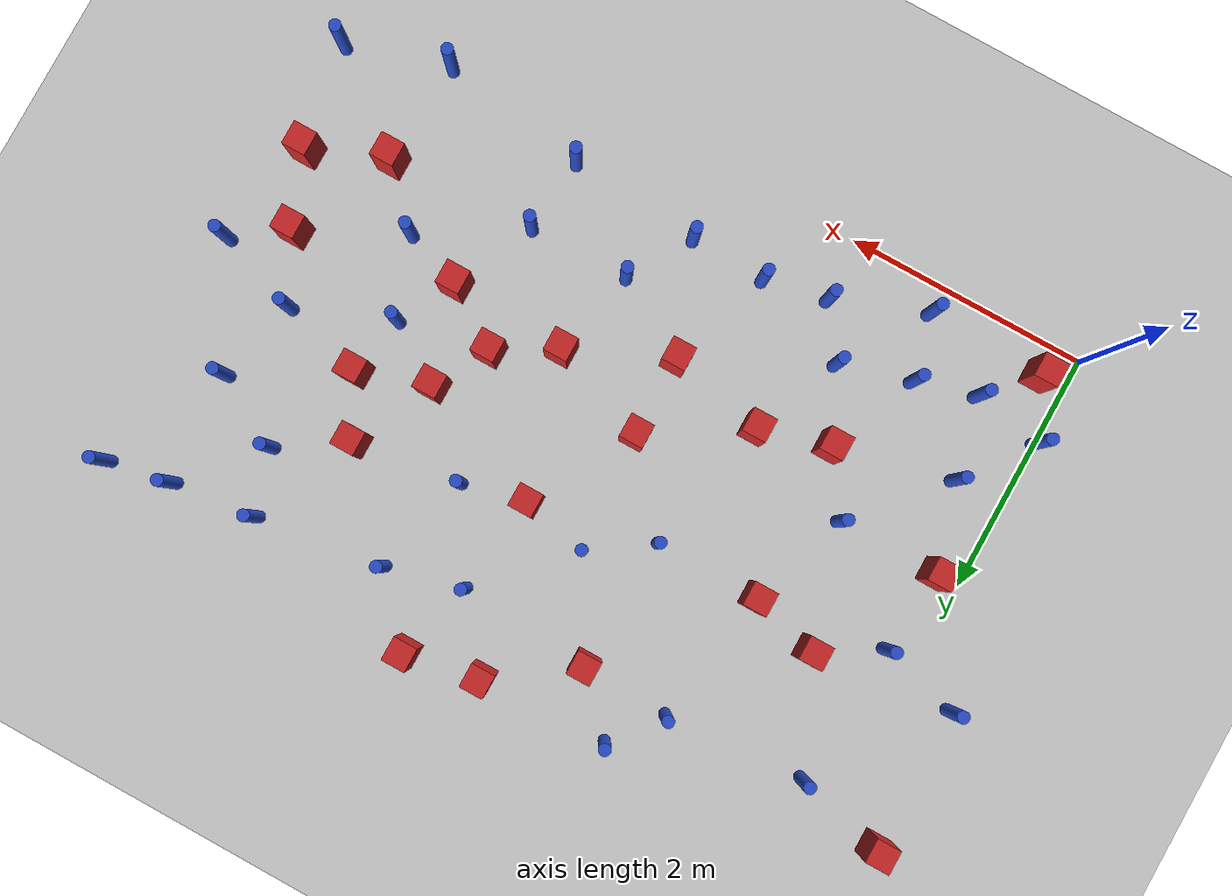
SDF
<sdf version="1.6">
 <world name="default">
  <model name="ground_plane">
   <static>1</static>
   <link name="link">
    <collision name="collision">
     <geometry><plane><normal>0 0 1</normal><size>100 100</size></plane></geometry>
     <surface><friction><ode><mu>100</mu><mu2>50</mu2></ode></friction></surface>
    </collision>
    <visual name="visual">
     <cast_shadows>0</cast_shadows>
     <geometry><plane><normal>0 0 1</normal><size>100 100</size></plane></geometry>
     <material>
      <ambient>1.0 1.0 1.0 1.0</ambient>
      <diffuse>0.8 0.8 0.8 1.0</diffuse>
      <specular>0.01 0.01 0.01 1.000000</specular>
     </material>
    </visual>
   </link>
  </model>
  <model name="square_post_obstacle1">
   <static>true</static>
   <pose>0.780798833853 2.99641068957 1.91545236811e-07 -7.35059704564e-06 1.12565212e-07 2.39332434364e-05</pose>
   <link name="link">
    <pose>0 0 0.25 0 -0 0</pose>
    <inertial>
     <mass>100</mass>
     <inertia>
      <ixx>0.166667</ixx>
      <ixy>0</ixy>
      <ixz>0</ixz>
      <iyy>0.166667</iyy>
      <iyz>0</iyz>
      <izz>0.166667</izz>
     </inertia>
    </inertial>
    <collision name="collision"><geometry><box><size>.2 .2 .5</size></box></geometry></collision>
    <visual name="visual">
     <geometry><box><size>.2 .2 .5</size></box></geometry>
     <material>
      <script><name>Gazebo/Red</name><uri>file://media/materials/scripts/gazebo.material</uri></script>
     </material>
    </visual>
   </link>
  </model>
  <model name="pole_obstacle7">
   <static>true</static>
   <pose>0.0157294788406 0.745171208726 7.38925637345e-09 -8.47170692798e-08 1.2497676491e-08 -1.74513093025e-07</pose>
   <link name="link">
    <pose>0 0 0.3 0 -0 0</pose>
    <inertial>
     <mass>1</mass>
     <inertia><ixx>0.145833</ixx><ixy>0</ixy><ixz>0</ixz><iyy>0.145833</iyy><iyz>0</iyz><izz>0.125</izz></inertia>
    </inertial>
    <collision name="collision">
     <geometry><cylinder><radius>0.05</radius><length>.6</length></cylinder></geometry>
    </collision>
    <visual name="visual">
     <geometry><cylinder><radius>0.05</radius><length>.6</length></cylinder></geometry>
     <material>
      <script><name>Gazebo/Blue</name><uri>file://media/materials/scripts/gazebo.material</uri></script>
     </material>
    </visual>
   </link>
  </model>
  <model name="pole_obstacle15">
   <static>true</static>
   <pose>1.82468125279 4.37478606143 7.38925637345e-09 -8.47170692799e-08 1.24976765033e-08 -1.74513093018e-07</pose>
   <link name="link">
    <pose>0 0 0.3 0 -0 0</pose>
    <inertial>
     <mass>1</mass>
     <inertia><ixx>0.145833</ixx><ixy>0</ixy><ixz>0</ixz><iyy>0.145833</iyy><iyz>0</iyz><izz>0.125</izz></inertia>
    </inertial>
    <collision name="collision">
     <geometry><cylinder><radius>0.05</radius><length>.6</length></cylinder></geometry>
    </collision>
    <visual name="visual">
     <geometry><cylinder><radius>0.05</radius><length>.6</length></cylinder></geometry>
     <material>
      <script><name>Gazebo/Blue</name><uri>file://media/materials/scripts/gazebo.material</uri></script>
     </material>
    </visual>
   </link>
  </model>
  <model name="square_post_obstacle23">
   <static>true</static>
   <pose>1.97175608762 1.70010967402 1.91545236811e-07 -7.35059704564e-06 1.12565212e-07 2.39332434364e-05</pose>
   <link name="link">
    <pose>0 0 0.25 0 -0 0</pose>
    <inertial>
     <mass>100</mass>
     <inertia>
      <ixx>0.166667</ixx>
      <ixy>0</ixy>
      <ixz>0</ixz>
      <iyy>0.166667</iyy>
      <iyz>0</iyz>
      <izz>0.166667</izz>
     </inertia>
    </inertial>
    <collision name="collision"><geometry><box><size>.2 .2 .5</size></box></geometry></collision>
    <visual name="visual">
     <geometry><box><size>.2 .2 .5</size></box></geometry>
     <material>
      <script><name>Gazebo/Red</name><uri>file://media/materials/scripts/gazebo.material</uri></script>
     </material>
    </visual>
   </link>
  </model>
  <model name="pole_obstacle19">
   <static>true</static>
   <pose>2.48070116993 0.652927011494 7.38925637345e-09 -8.471706928e-08 1.24976765177e-08 -1.74513093012e-07</pose>
   <link name="link">
    <pose>0 0 0.3 0 -0 0</pose>
    <inertial>
     <mass>1</mass>
     <inertia><ixx>0.145833</ixx><ixy>0</ixy><ixz>0</ixz><iyy>0.145833</iyy><iyz>0</iyz><izz>0.125</izz></inertia>
    </inertial>
    <collision name="collision">
     <geometry><cylinder><radius>0.05</radius><length>.6</length></cylinder></geometry>
    </collision>
    <visual name="visual">
     <geometry><cylinder><radius>0.05</radius><length>.6</length></cylinder></geometry>
     <material>
      <script><name>Gazebo/Blue</name><uri>file://media/materials/scripts/gazebo.material</uri></script>
     </material>
    </visual>
   </link>
  </model>
  <model name="square_post_obstacle30">
   <static>true</static>
   <pose>2.76138165454 2.18868919491 1.91545236811e-07 -7.35059704564e-06 1.12565212e-07 2.39332434364e-05</pose>
   <link name="link">
    <pose>0 0 0.25 0 -0 0</pose>
    <inertial>
     <mass>100</mass>
     <inertia>
      <ixx>0.166667</ixx>
      <ixy>0</ixy>
      <ixz>0</ixz>
      <iyy>0.166667</iyy>
      <iyz>0</iyz>
      <izz>0.166667</izz>
     </inertia>
    </inertial>
    <collision name="collision"><geometry><box><size>.2 .2 .5</size></box></geometry></collision>
    <visual name="visual">
     <geometry><box><size>.2 .2 .5</size></box></geometry>
     <material>
      <script><name>Gazebo/Red</name><uri>file://media/materials/scripts/gazebo.material</uri></script>
     </material>
    </visual>
   </link>
  </model>
  <model name="pole_obstacle20">
   <static>true</static>
   <pose>5.70650460813 4.25555970768 7.38925637345e-09 -8.47170692796e-08 1.24976764786e-08 -1.74513093032e-07</pose>
   <link name="link">
    <pose>0 0 0.3 0 -0 0</pose>
    <inertial>
     <mass>1</mass>
     <inertia><ixx>0.145833</ixx><ixy>0</ixy><ixz>0</ixz><iyy>0.145833</iyy><iyz>0</iyz><izz>0.125</izz></inertia>
    </inertial>
    <collision name="collision">
     <geometry><cylinder><radius>0.05</radius><length>.6</length></cylinder></geometry>
    </collision>
    <visual name="visual">
     <geometry><cylinder><radius>0.05</radius><length>.6</length></cylinder></geometry>
     <material>
      <script><name>Gazebo/Blue</name><uri>file://media/materials/scripts/gazebo.material</uri></script>
     </material>
    </visual>
   </link>
  </model>
  <model name="pole_obstacle24">
   <static>true</static>
   <pose>5.59330783779 2.63127796769 7.38925637345e-09 -8.47170692798e-08 1.24976764937e-08 -1.74513093023e-07</pose>
   <link name="link">
    <pose>0 0 0.3 0 -0 0</pose>
    <inertial>
     <mass>1</mass>
     <inertia><ixx>0.145833</ixx><ixy>0</ixy><ixz>0</ixz><iyy>0.145833</iyy><iyz>0</iyz><izz>0.125</izz></inertia>
    </inertial>
    <collision name="collision">
     <geometry><cylinder><radius>0.05</radius><length>.6</length></cylinder></geometry>
    </collision>
    <visual name="visual">
     <geometry><cylinder><radius>0.05</radius><length>.6</length></cylinder></geometry>
     <material>
      <script><name>Gazebo/Blue</name><uri>file://media/materials/scripts/gazebo.material</uri></script>
     </material>
    </visual>
   </link>
  </model>
  <model name="square_post_obstacle32">
   <static>true</static>
   <pose>-0.362702258872 4.06934785958 1.91545236811e-07 -7.35059704564e-06 1.12565212e-07 2.39332434364e-05</pose>
   <link name="link">
    <pose>0 0 0.25 0 -0 0</pose>
    <inertial>
     <mass>100</mass>
     <inertia>
      <ixx>0.166667</ixx>
      <ixy>0</ixy>
      <ixz>0</ixz>
      <iyy>0.166667</iyy>
      <iyz>0</iyz>
      <izz>0.166667</izz>
     </inertia>
    </inertial>
    <collision name="collision"><geometry><box><size>.2 .2 .5</size></box></geometry></collision>
    <visual name="visual">
     <geometry><box><size>.2 .2 .5</size></box></geometry>
     <material>
      <script><name>Gazebo/Red</name><uri>file://media/materials/scripts/gazebo.material</uri></script>
     </material>
    </visual>
   </link>
  </model>
  <model name="pole_obstacle30">
   <static>true</static>
   <pose>-0.3717249059 2.88271221948 7.38925637345e-09 -8.471706928e-08 1.24976765084e-08 -1.74513093017e-07</pose>
   <link name="link">
    <pose>0 0 0.3 0 -0 0</pose>
    <inertial>
     <mass>1</mass>
     <inertia><ixx>0.145833</ixx><ixy>0</ixy><ixz>0</ixz><iyy>0.145833</iyy><iyz>0</iyz><izz>0.125</izz></inertia>
    </inertial>
    <collision name="collision">
     <geometry><cylinder><radius>0.05</radius><length>.6</length></cylinder></geometry>
    </collision>
    <visual name="visual">
     <geometry><cylinder><radius>0.05</radius><length>.6</length></cylinder></geometry>
     <material>
      <script><name>Gazebo/Blue</name><uri>file://media/materials/scripts/gazebo.material</uri></script>
     </material>
    </visual>
   </link>
  </model>
  <model name="square_post_obstacle42">
   <static>true</static>
   <pose>4.06521116844 2.16793069314 1.91545236811e-07 -7.35059704564e-06 1.12565212e-07 2.39332434364e-05</pose>
   <link name="link">
    <pose>0 0 0.25 0 -0 0</pose>
    <inertial>
     <mass>100</mass>
     <inertia>
      <ixx>0.166667</ixx>
      <ixy>0</ixy>
      <ixz>0</ixz>
      <iyy>0.166667</iyy>
      <iyz>0</iyz>
      <izz>0.166667</izz>
     </inertia>
    </inertial>
    <collision name="collision"><geometry><box><size>.2 .2 .5</size></box></geometry></collision>
    <visual name="visual">
     <geometry><box><size>.2 .2 .5</size></box></geometry>
     <material>
      <script><name>Gazebo/Red</name><uri>file://media/materials/scripts/gazebo.material</uri></script>
     </material>
    </visual>
   </link>
  </model>
  <model name="pole_obstacle52">
   <static>true</static>
   <pose>4.20155017059 0.544220100935 7.38925637345e-09 -8.471706928e-08 1.24976765164e-08 -1.74513093012e-07</pose>
   <link name="link">
    <pose>0 0 0.3 0 -0 0</pose>
    <inertial>
     <mass>1</mass>
     <inertia><ixx>0.145833</ixx><ixy>0</ixy><ixz>0</ixz><iyy>0.145833</iyy><iyz>0</iyz><izz>0.125</izz></inertia>
    </inertial>
    <collision name="collision">
     <geometry><cylinder><radius>0.05</radius><length>.6</length></cylinder></geometry>
    </collision>
    <visual name="visual">
     <geometry><cylinder><radius>0.05</radius><length>.6</length></cylinder></geometry>
     <material>
      <script><name>Gazebo/Blue</name><uri>file://media/materials/scripts/gazebo.material</uri></script>
     </material>
    </visual>
   </link>
  </model>
  <model name="pole_obstacle53">
   <static>true</static>
   <pose>6.25784733025 0.611903842271 7.38925637345e-09 -8.47170692799e-08 1.24976765038e-08 -1.74513093018e-07</pose>
   <link name="link">
    <pose>0 0 0.3 0 -0 0</pose>
    <inertial>
     <mass>1</mass>
     <inertia><ixx>0.145833</ixx><ixy>0</ixy><ixz>0</ixz><iyy>0.145833</iyy><iyz>0</iyz><izz>0.125</izz></inertia>
    </inertial>
    <collision name="collision">
     <geometry><cylinder><radius>0.05</radius><length>.6</length></cylinder></geometry>
    </collision>
    <visual name="visual">
     <geometry><cylinder><radius>0.05</radius><length>.6</length></cylinder></geometry>
     <material>
      <script><name>Gazebo/Blue</name><uri>file://media/materials/scripts/gazebo.material</uri></script>
     </material>
    </visual>
   </link>
  </model>
  <model name="pole_obstacle55">
   <static>true</static>
   <pose>5.01442536244 4.1717296253 7.38925637345e-09 -8.47170692796e-08 1.24976764786e-08 -1.74513093032e-07</pose>
   <link name="link">
    <pose>0 0 0.3 0 -0 0</pose>
    <inertial>
     <mass>1</mass>
     <inertia><ixx>0.145833</ixx><ixy>0</ixy><ixz>0</ixz><iyy>0.145833</iyy><iyz>0</iyz><izz>0.125</izz></inertia>
    </inertial>
    <collision name="collision">
     <geometry><cylinder><radius>0.05</radius><length>.6</length></cylinder></geometry>
    </collision>
    <visual name="visual">
     <geometry><cylinder><radius>0.05</radius><length>.6</length></cylinder></geometry>
     <material>
      <script><name>Gazebo/Blue</name><uri>file://media/materials/scripts/gazebo.material</uri></script>
     </material>
    </visual>
   </link>
  </model>
  <model name="square_post_obstacle59">
   <static>true</static>
   <pose>4.54868804396 1.84242242547 1.91545236811e-07 -7.35059704564e-06 1.12565212e-07 2.39332434364e-05</pose>
   <link name="link">
    <pose>0 0 0.25 0 -0 0</pose>
    <inertial>
     <mass>100</mass>
     <inertia>
      <ixx>0.166667</ixx>
      <ixy>0</ixy>
      <ixz>0</ixz>
      <iyy>0.166667</iyy>
      <iyz>0</iyz>
      <izz>0.166667</izz>
     </inertia>
    </inertial>
    <collision name="collision"><geometry><box><size>.2 .2 .5</size></box></geometry></collision>
    <visual name="visual">
     <geometry><box><size>.2 .2 .5</size></box></geometry>
     <material>
      <script><name>Gazebo/Red</name><uri>file://media/materials/scripts/gazebo.material</uri></script>
     </material>
    </visual>
   </link>
  </model>
  <model name="pole_obstacle62">
   <static>true</static>
   <pose>6.28975024745 2.38811432239 7.38925637345e-09 -8.47170692798e-08 1.24976764937e-08 -1.74513093023e-07</pose>
   <link name="link">
    <pose>0 0 0.3 0 -0 0</pose>
    <inertial>
     <mass>1</mass>
     <inertia><ixx>0.145833</ixx><ixy>0</ixy><ixz>0</ixz><iyy>0.145833</iyy><iyz>0</iyz><izz>0.125</izz></inertia>
    </inertial>
    <collision name="collision">
     <geometry><cylinder><radius>0.05</radius><length>.6</length></cylinder></geometry>
    </collision>
    <visual name="visual">
     <geometry><cylinder><radius>0.05</radius><length>.6</length></cylinder></geometry>
     <material>
      <script><name>Gazebo/Blue</name><uri>file://media/materials/scripts/gazebo.material</uri></script>
     </material>
    </visual>
   </link>
  </model>
  <model name="square_post_obstacle66">
   <static>true</static>
   <pose>2.89675450499 4.40601068617 1.91545236811e-07 -7.35059704564e-06 1.12565212e-07 2.39332434364e-05</pose>
   <link name="link">
    <pose>0 0 0.25 0 -0 0</pose>
    <inertial>
     <mass>100</mass>
     <inertia>
      <ixx>0.166667</ixx>
      <ixy>0</ixy>
      <ixz>0</ixz>
      <iyy>0.166667</iyy>
      <iyz>0</iyz>
      <izz>0.166667</izz>
     </inertia>
    </inertial>
    <collision name="collision"><geometry><box><size>.2 .2 .5</size></box></geometry></collision>
    <visual name="visual">
     <geometry><box><size>.2 .2 .5</size></box></geometry>
     <material>
      <script><name>Gazebo/Red</name><uri>file://media/materials/scripts/gazebo.material</uri></script>
     </material>
    </visual>
   </link>
  </model>
  <model name="square_post_obstacle69">
   <static>true</static>
   <pose>3.5017118961 4.51480622991 1.91545236811e-07 -7.35059704564e-06 1.12565212e-07 2.39332434364e-05</pose>
   <link name="link">
    <pose>0 0 0.25 0 -0 0</pose>
    <inertial>
     <mass>100</mass>
     <inertia>
      <ixx>0.166667</ixx>
      <ixy>0</ixy>
      <ixz>0</ixz>
      <iyy>0.166667</iyy>
      <iyz>0</iyz>
      <izz>0.166667</izz>
     </inertia>
    </inertial>
    <collision name="collision"><geometry><box><size>.2 .2 .5</size></box></geometry></collision>
    <visual name="visual">
     <geometry><box><size>.2 .2 .5</size></box></geometry>
     <material>
      <script><name>Gazebo/Red</name><uri>file://media/materials/scripts/gazebo.material</uri></script>
     </material>
    </visual>
   </link>
  </model>
  <model name="pole_obstacle78">
   <static>true</static>
   <pose>0.371541187828 3.88380506845 7.38925637345e-09 -8.471706928e-08 1.24976765084e-08 -1.74513093017e-07</pose>
   <link name="link">
    <pose>0 0 0.3 0 -0 0</pose>
    <inertial>
     <mass>1</mass>
     <inertia><ixx>0.145833</ixx><ixy>0</ixy><ixz>0</ixz><iyy>0.145833</iyy><iyz>0</iyz><izz>0.125</izz></inertia>
    </inertial>
    <collision name="collision">
     <geometry><cylinder><radius>0.05</radius><length>.6</length></cylinder></geometry>
    </collision>
    <visual name="visual">
     <geometry><cylinder><radius>0.05</radius><length>.6</length></cylinder></geometry>
     <material>
      <script><name>Gazebo/Blue</name><uri>file://media/materials/scripts/gazebo.material</uri></script>
     </material>
    </visual>
   </link>
  </model>
  <model name="square_post_obstacle77">
   <static>true</static>
   <pose>4.63902565066 3.29577018884 1.91545236811e-07 -7.35059704564e-06 1.12565212e-07 2.39332434364e-05</pose>
   <link name="link">
    <pose>0 0 0.25 0 -0 0</pose>
    <inertial>
     <mass>100</mass>
     <inertia>
      <ixx>0.166667</ixx>
      <ixy>0</ixy>
      <ixz>0</ixz>
      <iyy>0.166667</iyy>
      <iyz>0</iyz>
      <izz>0.166667</izz>
     </inertia>
    </inertial>
    <collision name="collision"><geometry><box><size>.2 .2 .5</size></box></geometry></collision>
    <visual name="visual">
     <geometry><box><size>.2 .2 .5</size></box></geometry>
     <material>
      <script><name>Gazebo/Red</name><uri>file://media/materials/scripts/gazebo.material</uri></script>
     </material>
    </visual>
   </link>
  </model>
  <model name="pole_obstacle90">
   <static>true</static>
   <pose>2.6884856773 3.17494660747 7.38925637345e-09 -8.47170692798e-08 1.24976764939e-08 -1.74513093025e-07</pose>
   <link name="link">
    <pose>0 0 0.3 0 -0 0</pose>
    <inertial>
     <mass>1</mass>
     <inertia><ixx>0.145833</ixx><ixy>0</ixy><ixz>0</ixz><iyy>0.145833</iyy><iyz>0</iyz><izz>0.125</izz></inertia>
    </inertial>
    <collision name="collision">
     <geometry><cylinder><radius>0.05</radius><length>.6</length></cylinder></geometry>
    </collision>
    <visual name="visual">
     <geometry><cylinder><radius>0.05</radius><length>.6</length></cylinder></geometry>
     <material>
      <script><name>Gazebo/Blue</name><uri>file://media/materials/scripts/gazebo.material</uri></script>
     </material>
    </visual>
   </link>
  </model>
  <model name="pole_obstacle92">
   <static>true</static>
   <pose>5.76509957131 3.33006505462 7.38925637345e-09 -8.47170692798e-08 1.24976764937e-08 -1.74513093023e-07</pose>
   <link name="link">
    <pose>0 0 0.3 0 -0 0</pose>
    <inertial>
     <mass>1</mass>
     <inertia><ixx>0.145833</ixx><ixy>0</ixy><ixz>0</ixz><iyy>0.145833</iyy><iyz>0</iyz><izz>0.125</izz></inertia>
    </inertial>
    <collision name="collision">
     <geometry><cylinder><radius>0.05</radius><length>.6</length></cylinder></geometry>
    </collision>
    <visual name="visual">
     <geometry><cylinder><radius>0.05</radius><length>.6</length></cylinder></geometry>
     <material>
      <script><name>Gazebo/Blue</name><uri>file://media/materials/scripts/gazebo.material</uri></script>
     </material>
    </visual>
   </link>
  </model>
  <model name="square_post_obstacle84">
   <static>true</static>
   <pose>5.46819567508 1.23083027133 1.91545236811e-07 -7.35059704564e-06 1.12565212e-07 2.39332434364e-05</pose>
   <link name="link">
    <pose>0 0 0.25 0 -0 0</pose>
    <inertial>
     <mass>100</mass>
     <inertia>
      <ixx>0.166667</ixx>
      <ixy>0</ixy>
      <ixz>0</ixz>
      <iyy>0.166667</iyy>
      <iyz>0</iyz>
      <izz>0.166667</izz>
     </inertia>
    </inertial>
    <collision name="collision"><geometry><box><size>.2 .2 .5</size></box></geometry></collision>
    <visual name="visual">
     <geometry><box><size>.2 .2 .5</size></box></geometry>
     <material>
      <script><name>Gazebo/Red</name><uri>file://media/materials/scripts/gazebo.material</uri></script>
     </material>
    </visual>
   </link>
  </model>
  <model name="square_post_obstacle85">
   <static>true</static>
   <pose>0.219302795524 2.0095816245 1.91545236811e-07 -7.35059704564e-06 1.12565212e-07 2.39332434364e-05</pose>
   <link name="link">
    <pose>0 0 0.25 0 -0 0</pose>
    <inertial>
     <mass>100</mass>
     <inertia>
      <ixx>0.166667</ixx>
      <ixy>0</ixy>
      <ixz>0</ixz>
      <iyy>0.166667</iyy>
      <iyz>0</iyz>
      <izz>0.166667</izz>
     </inertia>
    </inertial>
    <collision name="collision"><geometry><box><size>.2 .2 .5</size></box></geometry></collision>
    <visual name="visual">
     <geometry><box><size>.2 .2 .5</size></box></geometry>
     <material>
      <script><name>Gazebo/Red</name><uri>file://media/materials/scripts/gazebo.material</uri></script>
     </material>
    </visual>
   </link>
  </model>
  <model name="pole_obstacle117">
   <static>true</static>
   <pose>1.08154353804 0.785349985203 7.38925637345e-09 -8.47170692799e-08 1.24976765075e-08 -1.74513093017e-07</pose>
   <link name="link">
    <pose>0 0 0.3 0 -0 0</pose>
    <inertial>
     <mass>1</mass>
     <inertia><ixx>0.145833</ixx><ixy>0</ixy><ixz>0</ixz><iyy>0.145833</iyy><iyz>0</iyz><izz>0.125</izz></inertia>
    </inertial>
    <collision name="collision">
     <geometry><cylinder><radius>0.05</radius><length>.6</length></cylinder></geometry>
    </collision>
    <visual name="visual">
     <geometry><cylinder><radius>0.05</radius><length>.6</length></cylinder></geometry>
     <material>
      <script><name>Gazebo/Blue</name><uri>file://media/materials/scripts/gazebo.material</uri></script>
     </material>
    </visual>
   </link>
  </model>
  <model name="square_post_obstacle110">
   <static>true</static>
   <pose>1.33901563786 2.8431578134 1.91545236811e-07 -7.35059704564e-06 1.12565212e-07 2.39332434364e-05</pose>
   <link name="link">
    <pose>0 0 0.25 0 -0 0</pose>
    <inertial>
     <mass>100</mass>
     <inertia>
      <ixx>0.166667</ixx>
      <ixy>0</ixy>
      <ixz>0</ixz>
      <iyy>0.166667</iyy>
      <iyz>0</iyz>
      <izz>0.166667</izz>
     </inertia>
    </inertial>
    <collision name="collision"><geometry><box><size>.2 .2 .5</size></box></geometry></collision>
    <visual name="visual">
     <geometry><box><size>.2 .2 .5</size></box></geometry>
     <material>
      <script><name>Gazebo/Red</name><uri>file://media/materials/scripts/gazebo.material</uri></script>
     </material>
    </visual>
   </link>
  </model>
  <model name="pole_obstacle120">
   <static>true</static>
   <pose>1.5152526829 3.96842903162 7.38925637345e-09 -8.47170692799e-08 1.24976765077e-08 -1.74513093019e-07</pose>
   <link name="link">
    <pose>0 0 0.3 0 -0 0</pose>
    <inertial>
     <mass>1</mass>
     <inertia><ixx>0.145833</ixx><ixy>0</ixy><ixz>0</ixz><iyy>0.145833</iyy><iyz>0</iyz><izz>0.125</izz></inertia>
    </inertial>
    <collision name="collision">
     <geometry><cylinder><radius>0.05</radius><length>.6</length></cylinder></geometry>
    </collision>
    <visual name="visual">
     <geometry><cylinder><radius>0.05</radius><length>.6</length></cylinder></geometry>
     <material>
      <script><name>Gazebo/Blue</name><uri>file://media/materials/scripts/gazebo.material</uri></script>
     </material>
    </visual>
   </link>
  </model>
  <model name="pole_obstacle121">
   <static>true</static>
   <pose>0.58820528384 0.641569133983 7.38925637345e-09 -8.47170692799e-08 1.24976765008e-08 -1.7451309302e-07</pose>
   <link name="link">
    <pose>0 0 0.3 0 -0 0</pose>
    <inertial>
     <mass>1</mass>
     <inertia><ixx>0.145833</ixx><ixy>0</ixy><ixz>0</ixz><iyy>0.145833</iyy><iyz>0</iyz><izz>0.125</izz></inertia>
    </inertial>
    <collision name="collision">
     <geometry><cylinder><radius>0.05</radius><length>.6</length></cylinder></geometry>
    </collision>
    <visual name="visual">
     <geometry><cylinder><radius>0.05</radius><length>.6</length></cylinder></geometry>
     <material>
      <script><name>Gazebo/Blue</name><uri>file://media/materials/scripts/gazebo.material</uri></script>
     </material>
    </visual>
   </link>
  </model>
  <model name="square_post_obstacle115">
   <static>true</static>
   <pose>2.76517168895 1.52146003509 1.91545236811e-07 -7.35059704564e-06 1.12565212e-07 2.39332434364e-05</pose>
   <link name="link">
    <pose>0 0 0.25 0 -0 0</pose>
    <inertial>
     <mass>100</mass>
     <inertia>
      <ixx>0.166667</ixx>
      <ixy>0</ixy>
      <ixz>0</ixz>
      <iyy>0.166667</iyy>
      <iyz>0</iyz>
      <izz>0.166667</izz>
     </inertia>
    </inertial>
    <collision name="collision"><geometry><box><size>.2 .2 .5</size></box></geometry></collision>
    <visual name="visual">
     <geometry><box><size>.2 .2 .5</size></box></geometry>
     <material>
      <script><name>Gazebo/Red</name><uri>file://media/materials/scripts/gazebo.material</uri></script>
     </material>
    </visual>
   </link>
  </model>
  <model name="pole_obstacle134">
   <static>true</static>
   <pose>1.21408672252 0.24726376938 7.38925637345e-09 -8.47170692799e-08 1.24976765057e-08 -1.74513093016e-07</pose>
   <link name="link">
    <pose>0 0 0.3 0 -0 0</pose>
    <inertial>
     <mass>1</mass>
     <inertia><ixx>0.145833</ixx><ixy>0</ixy><ixz>0</ixz><iyy>0.145833</iyy><iyz>0</iyz><izz>0.125</izz></inertia>
    </inertial>
    <collision name="collision">
     <geometry><cylinder><radius>0.05</radius><length>.6</length></cylinder></geometry>
    </collision>
    <visual name="visual">
     <geometry><cylinder><radius>0.05</radius><length>.6</length></cylinder></geometry>
     <material>
      <script><name>Gazebo/Blue</name><uri>file://media/materials/scripts/gazebo.material</uri></script>
     </material>
    </visual>
   </link>
  </model>
  <model name="pole_obstacle139">
   <static>true</static>
   <pose>6.23703736822 4.35469825835 7.38925637345e-09 -8.47170692796e-08 1.24976764786e-08 -1.74513093032e-07</pose>
   <link name="link">
    <pose>0 0 0.3 0 -0 0</pose>
    <inertial>
     <mass>1</mass>
     <inertia><ixx>0.145833</ixx><ixy>0</ixy><ixz>0</ixz><iyy>0.145833</iyy><iyz>0</iyz><izz>0.125</izz></inertia>
    </inertial>
    <collision name="collision">
     <geometry><cylinder><radius>0.05</radius><length>.6</length></cylinder></geometry>
    </collision>
    <visual name="visual">
     <geometry><cylinder><radius>0.05</radius><length>.6</length></cylinder></geometry>
     <material>
      <script><name>Gazebo/Blue</name><uri>file://media/materials/scripts/gazebo.material</uri></script>
     </material>
    </visual>
   </link>
  </model>
  <model name="square_post_obstacle127">
   <static>true</static>
   <pose>0.244717123964 0.262522405081 1.91545236811e-07 -7.35059704564e-06 1.12565212e-07 2.39332434364e-05</pose>
   <link name="link">
    <pose>0 0 0.25 0 -0 0</pose>
    <inertial>
     <mass>100</mass>
     <inertia>
      <ixx>0.166667</ixx>
      <ixy>0</ixy>
      <ixz>0</ixz>
      <iyy>0.166667</iyy>
      <iyz>0</iyz>
      <izz>0.166667</izz>
     </inertia>
    </inertial>
    <collision name="collision"><geometry><box><size>.2 .2 .5</size></box></geometry></collision>
    <visual name="visual">
     <geometry><box><size>.2 .2 .5</size></box></geometry>
     <material>
      <script><name>Gazebo/Red</name><uri>file://media/materials/scripts/gazebo.material</uri></script>
     </material>
    </visual>
   </link>
  </model>
  <model name="pole_obstacle152">
   <static>true</static>
   <pose>4.8051638238 2.31313955156 7.38925637345e-09 -8.47170692798e-08 1.24976764937e-08 -1.74513093023e-07</pose>
   <link name="link">
    <pose>0 0 0.3 0 -0 0</pose>
    <inertial>
     <mass>1</mass>
     <inertia><ixx>0.145833</ixx><ixy>0</ixy><ixz>0</ixz><iyy>0.145833</iyy><iyz>0</iyz><izz>0.125</izz></inertia>
    </inertial>
    <collision name="collision">
     <geometry><cylinder><radius>0.05</radius><length>.6</length></cylinder></geometry>
    </collision>
    <visual name="visual">
     <geometry><cylinder><radius>0.05</radius><length>.6</length></cylinder></geometry>
     <material>
      <script><name>Gazebo/Blue</name><uri>file://media/materials/scripts/gazebo.material</uri></script>
     </material>
    </visual>
   </link>
  </model>
  <model name="pole_obstacle164">
   <static>true</static>
   <pose>4.25212674475 1.17008621939 7.38925637345e-09 -8.471706928e-08 1.24976765134e-08 -1.74513093015e-07</pose>
   <link name="link">
    <pose>0 0 0.3 0 -0 0</pose>
    <inertial>
     <mass>1</mass>
     <inertia><ixx>0.145833</ixx><ixy>0</ixy><ixz>0</ixz><iyy>0.145833</iyy><iyz>0</iyz><izz>0.125</izz></inertia>
    </inertial>
    <collision name="collision">
     <geometry><cylinder><radius>0.05</radius><length>.6</length></cylinder></geometry>
    </collision>
    <visual name="visual">
     <geometry><cylinder><radius>0.05</radius><length>.6</length></cylinder></geometry>
     <material>
      <script><name>Gazebo/Blue</name><uri>file://media/materials/scripts/gazebo.material</uri></script>
     </material>
    </visual>
   </link>
  </model>
  <model name="pole_obstacle167">
   <static>true</static>
   <pose>3.10895297479 0.633455667605 7.38925637345e-09 -8.471706928e-08 1.24976765177e-08 -1.74513093012e-07</pose>
   <link name="link">
    <pose>0 0 0.3 0 -0 0</pose>
    <inertial>
     <mass>1</mass>
     <inertia><ixx>0.145833</ixx><ixy>0</ixy><ixz>0</ixz><iyy>0.145833</iyy><iyz>0</iyz><izz>0.125</izz></inertia>
    </inertial>
    <collision name="collision">
     <geometry><cylinder><radius>0.05</radius><length>.6</length></cylinder></geometry>
    </collision>
    <visual name="visual">
     <geometry><cylinder><radius>0.05</radius><length>.6</length></cylinder></geometry>
     <material>
      <script><name>Gazebo/Blue</name><uri>file://media/materials/scripts/gazebo.material</uri></script>
     </material>
    </visual>
   </link>
  </model>
  <model name="square_post_obstacle164">
   <static>true</static>
   <pose>3.58247689506 1.89290028153 1.91545236811e-07 -7.35059704564e-06 1.12565212e-07 2.39332434364e-05</pose>
   <link name="link">
    <pose>0 0 0.25 0 -0 0</pose>
    <inertial>
     <mass>100</mass>
     <inertia>
      <ixx>0.166667</ixx>
      <ixy>0</ixy>
      <ixz>0</ixz>
      <iyy>0.166667</iyy>
      <iyz>0</iyz>
      <izz>0.166667</izz>
     </inertia>
    </inertial>
    <collision name="collision"><geometry><box><size>.2 .2 .5</size></box></geometry></collision>
    <visual name="visual">
     <geometry><box><size>.2 .2 .5</size></box></geometry>
     <material>
      <script><name>Gazebo/Red</name><uri>file://media/materials/scripts/gazebo.material</uri></script>
     </material>
    </visual>
   </link>
  </model>
  <model name="pole_obstacle175">
   <static>true</static>
   <pose>0.437744378335 1.30531419998 7.38925637345e-09 -8.47170692798e-08 1.24976765025e-08 -1.74513093018e-07</pose>
   <link name="link">
    <pose>0 0 0.3 0 -0 0</pose>
    <inertial>
     <mass>1</mass>
     <inertia><ixx>0.145833</ixx><ixy>0</ixy><ixz>0</ixz><iyy>0.145833</iyy><iyz>0</iyz><izz>0.125</izz></inertia>
    </inertial>
    <collision name="collision">
     <geometry><cylinder><radius>0.05</radius><length>.6</length></cylinder></geometry>
    </collision>
    <visual name="visual">
     <geometry><cylinder><radius>0.05</radius><length>.6</length></cylinder></geometry>
     <material>
      <script><name>Gazebo/Blue</name><uri>file://media/materials/scripts/gazebo.material</uri></script>
     </material>
    </visual>
   </link>
  </model>
  <model name="square_post_obstacle167">
   <static>true</static>
   <pose>2.24482393601 3.9353929766 1.91545236811e-07 -7.35059704564e-06 1.12565212e-07 2.39332434364e-05</pose>
   <link name="link">
    <pose>0 0 0.25 0 -0 0</pose>
    <inertial>
     <mass>100</mass>
     <inertia>
      <ixx>0.166667</ixx>
      <ixy>0</ixy>
      <ixz>0</ixz>
      <iyy>0.166667</iyy>
      <iyz>0</iyz>
      <izz>0.166667</izz>
     </inertia>
    </inertial>
    <collision name="collision"><geometry><box><size>.2 .2 .5</size></box></geometry></collision>
    <visual name="visual">
     <geometry><box><size>.2 .2 .5</size></box></geometry>
     <material>
      <script><name>Gazebo/Red</name><uri>file://media/materials/scripts/gazebo.material</uri></script>
     </material>
    </visual>
   </link>
  </model>
  <model name="pole_obstacle178">
   <static>true</static>
   <pose>3.33069384465 3.86624938506 7.38925637345e-09 -8.47170692798e-08 1.24976764939e-08 -1.74513093025e-07</pose>
   <link name="link">
    <pose>0 0 0.3 0 -0 0</pose>
    <inertial>
     <mass>1</mass>
     <inertia><ixx>0.145833</ixx><ixy>0</ixy><ixz>0</ixz><iyy>0.145833</iyy><iyz>0</iyz><izz>0.125</izz></inertia>
    </inertial>
    <collision name="collision">
     <geometry><cylinder><radius>0.05</radius><length>.6</length></cylinder></geometry>
    </collision>
    <visual name="visual">
     <geometry><cylinder><radius>0.05</radius><length>.6</length></cylinder></geometry>
     <material>
      <script><name>Gazebo/Blue</name><uri>file://media/materials/scripts/gazebo.material</uri></script>
     </material>
    </visual>
   </link>
  </model>
  <model name="pole_obstacle181">
   <static>true</static>
   <pose>2.20179970925 2.84215944689 7.38925637345e-09 -8.47170692798e-08 1.24976764939e-08 -1.74513093025e-07</pose>
   <link name="link">
    <pose>0 0 0.3 0 -0 0</pose>
    <inertial>
     <mass>1</mass>
     <inertia><ixx>0.145833</ixx><ixy>0</ixy><ixz>0</ixz><iyy>0.145833</iyy><iyz>0</iyz><izz>0.125</izz></inertia>
    </inertial>
    <collision name="collision">
     <geometry><cylinder><radius>0.05</radius><length>.6</length></cylinder></geometry>
    </collision>
    <visual name="visual">
     <geometry><cylinder><radius>0.05</radius><length>.6</length></cylinder></geometry>
     <material>
      <script><name>Gazebo/Blue</name><uri>file://media/materials/scripts/gazebo.material</uri></script>
     </material>
    </visual>
   </link>
  </model>
  <model name="square_post_obstacle171">
   <static>true</static>
   <pose>3.23970048566 3.05208352499 1.91545236811e-07 -7.35059704564e-06 1.12565212e-07 2.39332434364e-05</pose>
   <link name="link">
    <pose>0 0 0.25 0 -0 0</pose>
    <inertial>
     <mass>100</mass>
     <inertia>
      <ixx>0.166667</ixx>
      <ixy>0</ixy>
      <ixz>0</ixz>
      <iyy>0.166667</iyy>
      <iyz>0</iyz>
      <izz>0.166667</izz>
     </inertia>
    </inertial>
    <collision name="collision"><geometry><box><size>.2 .2 .5</size></box></geometry></collision>
    <visual name="visual">
     <geometry><box><size>.2 .2 .5</size></box></geometry>
     <material>
      <script><name>Gazebo/Red</name><uri>file://media/materials/scripts/gazebo.material</uri></script>
     </material>
    </visual>
   </link>
  </model>
  <model name="pole_obstacle189">
   <static>true</static>
   <pose>0.281687060403 2.70557762161 7.38925637345e-09 -8.471706928e-08 1.24976765078e-08 -1.74513093017e-07</pose>
   <link name="link">
    <pose>0 0 0.3 0 -0 0</pose>
    <inertial>
     <mass>1</mass>
     <inertia><ixx>0.145833</ixx><ixy>0</ixy><ixz>0</ixz><iyy>0.145833</iyy><iyz>0</iyz><izz>0.125</izz></inertia>
    </inertial>
    <collision name="collision">
     <geometry><cylinder><radius>0.05</radius><length>.6</length></cylinder></geometry>
    </collision>
    <visual name="visual">
     <geometry><cylinder><radius>0.05</radius><length>.6</length></cylinder></geometry>
     <material>
      <script><name>Gazebo/Blue</name><uri>file://media/materials/scripts/gazebo.material</uri></script>
     </material>
    </visual>
   </link>
  </model>
  <model name="pole_obstacle191">
   <static>true</static>
   <pose>3.96350902164 4.02434738167 7.38925637345e-09 -8.47170692797e-08 1.24976764895e-08 -1.74513093027e-07</pose>
   <link name="link">
    <pose>0 0 0.3 0 -0 0</pose>
    <inertial>
     <mass>1</mass>
     <inertia><ixx>0.145833</ixx><ixy>0</ixy><ixz>0</ixz><iyy>0.145833</iyy><iyz>0</iyz><izz>0.125</izz></inertia>
    </inertial>
    <collision name="collision">
     <geometry><cylinder><radius>0.05</radius><length>.6</length></cylinder></geometry>
    </collision>
    <visual name="visual">
     <geometry><cylinder><radius>0.05</radius><length>.6</length></cylinder></geometry>
     <material>
      <script><name>Gazebo/Blue</name><uri>file://media/materials/scripts/gazebo.material</uri></script>
     </material>
    </visual>
   </link>
  </model>
  <model name="square_post_obstacle186">
   <static>true</static>
   <pose>1.39656706369 1.53875682877 1.91545236811e-07 -7.35059704564e-06 1.12565212e-07 2.39332434364e-05</pose>
   <link name="link">
    <pose>0 0 0.25 0 -0 0</pose>
    <inertial>
     <mass>100</mass>
     <inertia>
      <ixx>0.166667</ixx>
      <ixy>0</ixy>
      <ixz>0</ixz>
      <iyy>0.166667</iyy>
      <iyz>0</iyz>
      <izz>0.166667</izz>
     </inertia>
    </inertial>
    <collision name="collision"><geometry><box><size>.2 .2 .5</size></box></geometry></collision>
    <visual name="visual">
     <geometry><box><size>.2 .2 .5</size></box></geometry>
     <material>
      <script><name>Gazebo/Red</name><uri>file://media/materials/scripts/gazebo.material</uri></script>
     </material>
    </visual>
   </link>
  </model>
  <model name="pole_obstacle194">
   <static>true</static>
   <pose>5.04911952657 1.6697116162 7.38925637345e-09 -8.471706928e-08 1.24976765134e-08 -1.74513093015e-07</pose>
   <link name="link">
    <pose>0 0 0.3 0 -0 0</pose>
    <inertial>
     <mass>1</mass>
     <inertia><ixx>0.145833</ixx><ixy>0</ixy><ixz>0</ixz><iyy>0.145833</iyy><iyz>0</iyz><izz>0.125</izz></inertia>
    </inertial>
    <collision name="collision">
     <geometry><cylinder><radius>0.05</radius><length>.6</length></cylinder></geometry>
    </collision>
    <visual name="visual">
     <geometry><cylinder><radius>0.05</radius><length>.6</length></cylinder></geometry>
     <material>
      <script><name>Gazebo/Blue</name><uri>file://media/materials/scripts/gazebo.material</uri></script>
     </material>
    </visual>
   </link>
  </model>
  <model name="pole_obstacle196">
   <static>true</static>
   <pose>3.41930684987 1.15186253197 7.38925637345e-09 -8.471706928e-08 1.24976765152e-08 -1.74513093012e-07</pose>
   <link name="link">
    <pose>0 0 0.3 0 -0 0</pose>
    <inertial>
     <mass>1</mass>
     <inertia><ixx>0.145833</ixx><ixy>0</ixy><ixz>0</ixz><iyy>0.145833</iyy><iyz>0</iyz><izz>0.125</izz></inertia>
    </inertial>
    <collision name="collision">
     <geometry><cylinder><radius>0.05</radius><length>.6</length></cylinder></geometry>
    </collision>
    <visual name="visual">
     <geometry><cylinder><radius>0.05</radius><length>.6</length></cylinder></geometry>
     <material>
      <script><name>Gazebo/Blue</name><uri>file://media/materials/scripts/gazebo.material</uri></script>
     </material>
    </visual>
   </link>
  </model>
  <model name="pole_obstacle198">
   <static>true</static>
   <pose>1.06193336196 2.0158647846 7.38925637345e-09 -8.47170692798e-08 1.2497676495e-08 -1.74513093023e-07</pose>
   <link name="link">
    <pose>0 0 0.3 0 -0 0</pose>
    <inertial>
     <mass>1</mass>
     <inertia><ixx>0.145833</ixx><ixy>0</ixy><ixz>0</ixz><iyy>0.145833</iyy><iyz>0</iyz><izz>0.125</izz></inertia>
    </inertial>
    <collision name="collision">
     <geometry><cylinder><radius>0.05</radius><length>.6</length></cylinder></geometry>
    </collision>
    <visual name="visual">
     <geometry><cylinder><radius>0.05</radius><length>.6</length></cylinder></geometry>
     <material>
      <script><name>Gazebo/Blue</name><uri>file://media/materials/scripts/gazebo.material</uri></script>
     </material>
    </visual>
   </link>
  </model>
  <model name="square_post_obstacle191">
   <static>true</static>
   <pose>6.09262144009 1.48214584764 1.91545236811e-07 -7.35059704564e-06 1.12565212e-07 2.39332434364e-05</pose>
   <link name="link">
    <pose>0 0 0.25 0 -0 0</pose>
    <inertial>
     <mass>100</mass>
     <inertia>
      <ixx>0.166667</ixx>
      <ixy>0</ixy>
      <ixz>0</ixz>
      <iyy>0.166667</iyy>
      <iyz>0</iyz>
      <izz>0.166667</izz>
     </inertia>
    </inertial>
    <collision name="collision"><geometry><box><size>.2 .2 .5</size></box></geometry></collision>
    <visual name="visual">
     <geometry><box><size>.2 .2 .5</size></box></geometry>
     <material>
      <script><name>Gazebo/Red</name><uri>file://media/materials/scripts/gazebo.material</uri></script>
     </material>
    </visual>
   </link>
  </model>
  <model name="pole_obstacle200">
   <static>true</static>
   <pose>1.96184391204 0.543350887118 7.38925637345e-09 -8.47170692796e-08 1.24976764741e-08 -1.74513093036e-07</pose>
   <link name="link">
    <pose>0 0 0.3 0 -0 0</pose>
    <inertial>
     <mass>1</mass>
     <inertia><ixx>0.145833</ixx><ixy>0</ixy><ixz>0</ixz><iyy>0.145833</iyy><iyz>0</iyz><izz>0.125</izz></inertia>
    </inertial>
    <collision name="collision">
     <geometry><cylinder><radius>0.05</radius><length>.6</length></cylinder></geometry>
    </collision>
    <visual name="visual">
     <geometry><cylinder><radius>0.05</radius><length>.6</length></cylinder></geometry>
     <material>
      <script><name>Gazebo/Blue</name><uri>file://media/materials/scripts/gazebo.material</uri></script>
     </material>
    </visual>
   </link>
  </model>
  <model name="pole_obstacle213">
   <static>true</static>
   <pose>5.42366049 0.356716848268 7.38925637345e-09 -8.47170692798e-08 1.24976765003e-08 -1.7451309302e-07</pose>
   <link name="link">
    <pose>0 0 0.3 0 -0 0</pose>
    <inertial>
     <mass>1</mass>
     <inertia><ixx>0.145833</ixx><ixy>0</ixy><ixz>0</ixz><iyy>0.145833</iyy><iyz>0</iyz><izz>0.125</izz></inertia>
    </inertial>
    <collision name="collision">
     <geometry><cylinder><radius>0.05</radius><length>.6</length></cylinder></geometry>
    </collision>
    <visual name="visual">
     <geometry><cylinder><radius>0.05</radius><length>.6</length></cylinder></geometry>
     <material>
      <script><name>Gazebo/Blue</name><uri>file://media/materials/scripts/gazebo.material</uri></script>
     </material>
    </visual>
   </link>
  </model>
  <model name="square_post_obstacle202">
   <static>true</static>
   <pose>4.8959450926 2.8118622604 1.91545236811e-07 -7.35059704564e-06 1.12565212e-07 2.39332434364e-05</pose>
   <link name="link">
    <pose>0 0 0.25 0 -0 0</pose>
    <inertial>
     <mass>100</mass>
     <inertia>
      <ixx>0.166667</ixx>
      <ixy>0</ixy>
      <ixz>0</ixz>
      <iyy>0.166667</iyy>
      <iyz>0</iyz>
      <izz>0.166667</izz>
     </inertia>
    </inertial>
    <collision name="collision"><geometry><box><size>.2 .2 .5</size></box></geometry></collision>
    <visual name="visual">
     <geometry><box><size>.2 .2 .5</size></box></geometry>
     <material>
      <script><name>Gazebo/Red</name><uri>file://media/materials/scripts/gazebo.material</uri></script>
     </material>
    </visual>
   </link>
  </model>
  <model name="square_post_obstacle212">
   <static>true</static>
   <pose>4.31276380013 2.62051888185 1.91545236811e-07 -7.35059704564e-06 1.12565212e-07 2.39332434364e-05</pose>
   <link name="link">
    <pose>0 0 0.25 0 -0 0</pose>
    <inertial>
     <mass>100</mass>
     <inertia>
      <ixx>0.166667</ixx>
      <ixy>0</ixy>
      <ixz>0</ixz>
      <iyy>0.166667</iyy>
      <iyz>0</iyz>
      <izz>0.166667</izz>
     </inertia>
    </inertial>
    <collision name="collision"><geometry><box><size>.2 .2 .5</size></box></geometry></collision>
    <visual name="visual">
     <geometry><box><size>.2 .2 .5</size></box></geometry>
     <material>
      <script><name>Gazebo/Red</name><uri>file://media/materials/scripts/gazebo.material</uri></script>
     </material>
    </visual>
   </link>
  </model>
  <model name="square_post_obstacle214">
   <static>true</static>
   <pose>5.85478372611 2.08437375909 1.91545236811e-07 -7.35059704564e-06 1.12565212e-07 2.39332434364e-05</pose>
   <link name="link">
    <pose>0 0 0.25 0 -0 0</pose>
    <inertial>
     <mass>100</mass>
     <inertia>
      <ixx>0.166667</ixx>
      <ixy>0</ixy>
      <ixz>0</ixz>
      <iyy>0.166667</iyy>
      <iyz>0</iyz>
      <izz>0.166667</izz>
     </inertia>
    </inertial>
    <collision name="collision"><geometry><box><size>.2 .2 .5</size></box></geometry></collision>
    <visual name="visual">
     <geometry><box><size>.2 .2 .5</size></box></geometry>
     <material>
      <script><name>Gazebo/Red</name><uri>file://media/materials/scripts/gazebo.material</uri></script>
     </material>
    </visual>
   </link>
  </model>
  <model name="pole_obstacle214">
   <static>true</static>
   <pose>3.75918682096 3.17919228321 7.38925637345e-09 -8.47170692798e-08 1.24976764939e-08 -1.74513093025e-07</pose>
   <link name="link">
    <pose>0 0 0.3 0 -0 0</pose>
    <inertial>
     <mass>1</mass>
     <inertia><ixx>0.145833</ixx><ixy>0</ixy><ixz>0</ixz><iyy>0.145833</iyy><iyz>0</iyz><izz>0.125</izz></inertia>
    </inertial>
    <collision name="collision">
     <geometry><cylinder><radius>0.05</radius><length>.6</length></cylinder></geometry>
    </collision>
    <visual name="visual">
     <geometry><cylinder><radius>0.05</radius><length>.6</length></cylinder></geometry>
     <material>
      <script><name>Gazebo/Blue</name><uri>file://media/materials/scripts/gazebo.material</uri></script>
     </material>
    </visual>
   </link>
  </model>
  <model name="pole_obstacle215">
   <static>true</static>
   <pose>5.17557475657 3.6469260011 7.38925637345e-09 -8.47170692798e-08 1.24976764937e-08 -1.74513093023e-07</pose>
   <link name="link">
    <pose>0 0 0.3 0 -0 0</pose>
    <inertial>
     <mass>1</mass>
     <inertia><ixx>0.145833</ixx><ixy>0</ixy><ixz>0</ixz><iyy>0.145833</iyy><iyz>0</iyz><izz>0.125</izz></inertia>
    </inertial>
    <collision name="collision">
     <geometry><cylinder><radius>0.05</radius><length>.6</length></cylinder></geometry>
    </collision>
    <visual name="visual">
     <geometry><cylinder><radius>0.05</radius><length>.6</length></cylinder></geometry>
     <material>
      <script><name>Gazebo/Blue</name><uri>file://media/materials/scripts/gazebo.material</uri></script>
     </material>
    </visual>
   </link>
  </model>
  <model name="pole_obstacle223">
   <static>true</static>
   <pose>1.66716000957 0.960463020781 7.38925637345e-09 -8.471706928e-08 1.24976765041e-08 -1.74513093019e-07</pose>
   <link name="link">
    <pose>0 0 0.3 0 -0 0</pose>
    <inertial>
     <mass>1</mass>
     <inertia><ixx>0.145833</ixx><ixy>0</ixy><ixz>0</ixz><iyy>0.145833</iyy><iyz>0</iyz><izz>0.125</izz></inertia>
    </inertial>
    <collision name="collision">
     <geometry><cylinder><radius>0.05</radius><length>.6</length></cylinder></geometry>
    </collision>
    <visual name="visual">
     <geometry><cylinder><radius>0.05</radius><length>.6</length></cylinder></geometry>
     <material>
      <script><name>Gazebo/Blue</name><uri>file://media/materials/scripts/gazebo.material</uri></script>
     </material>
    </visual>
   </link>
  </model>
 </world>
</sdf>
